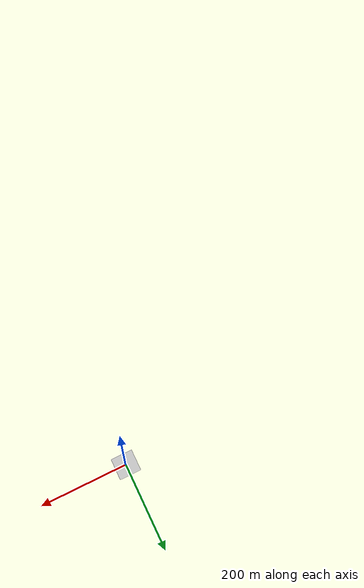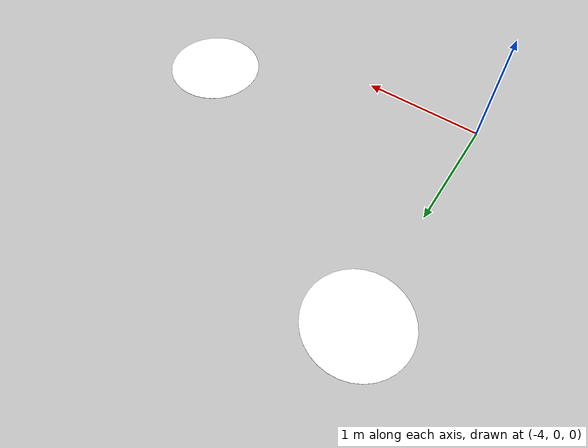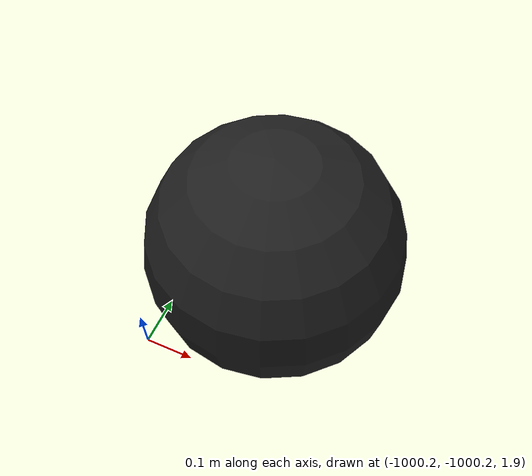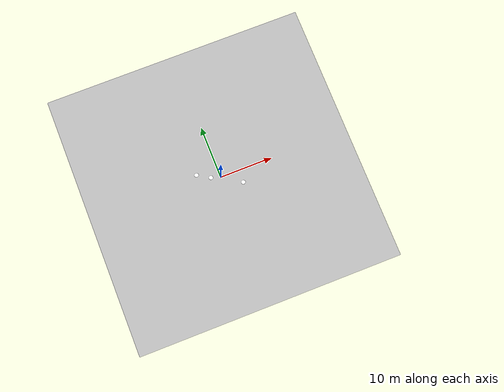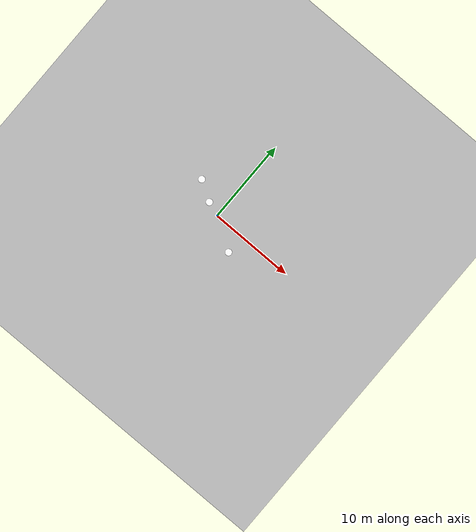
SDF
<sdf version="1.10">
 <world name="sae1_26">
  <physics type="ode">
   <max_step_size>0.004</max_step_size>
   <real_time_factor>1.0</real_time_factor>
   <real_time_update_rate>250</real_time_update_rate>
  </physics>
  <plugin name="gz::sim::systems::Physics" filename="gz-sim-physics-system"/>
  <plugin name="gz::sim::systems::UserCommands" filename="gz-sim-user-commands-system"/>
  <plugin name="gz::sim::systems::SceneBroadcaster" filename="gz-sim-scene-broadcaster-system"/>
  <plugin name="gz::sim::systems::Contact" filename="gz-sim-contact-system"/>
  <plugin name="gz::sim::systems::Imu" filename="gz-sim-imu-system"/>
  <plugin name="gz::sim::systems::AirPressure" filename="gz-sim-air-pressure-system"/>
  <plugin name="gz::sim::systems::ApplyLinkWrench" filename="gz-sim-apply-link-wrench-system"/>
  <plugin name="gz::sim::systems::NavSat" filename="gz-sim-navsat-system"/>
  <plugin name="gz::sim::systems::Sensors" filename="gz-sim-sensors-system">
   <render_engine>ogre2</render_engine>
  </plugin>
  <gravity>0 0 -9.8</gravity>
  <magnetic_field>6e-06 2.3e-05 -4.2e-05</magnetic_field>
  <atmosphere type="adiabatic"/>
  <spherical_coordinates>
   <surface_model>EARTH_WGS84</surface_model>
   <world_frame_orientation>ENU</world_frame_orientation>
   <latitude_deg>-23.203008</latitude_deg>
   <longitude_deg>-45.874897</longitude_deg>
   <elevation>0</elevation>
  </spherical_coordinates>
  <scene><ambient>0.4 0.4 0.4 1</ambient><background>0.7 0.7 0.7 1</background><shadows>true</shadows></scene>
  <light type="directional" name="sun">
   <pose>0 0 20 0 0 0</pose>
   <ambient>0.8 0.8 0.8 1</ambient>
   <diffuse>1.0 1.0 1.0 1</diffuse>
   <specular>0.2 0.2 0.2 1</specular>
   <attenuation>
    <range>1000</range>
    <constant>0.9</constant>
    <linear>0.01</linear>
    <quadratic>0.001</quadratic>
   </attenuation>
   <direction>-0.5 0.1 -0.9</direction>
  </light>
  <model name="ground_plane">
   <static>true</static>
   <link name="link">
    <collision name="collision">
     <geometry><plane><normal>0 0 1</normal><size>250 250</size></plane></geometry>
     <surface><friction><ode><mu>1</mu><mu2>1</mu2></ode></friction></surface>
    </collision>
    <visual name="grass">
     <cast_shadows>false</cast_shadows>
     <geometry><mesh><uri>file://grass_plane/meshes/grass_plane.dae</uri></mesh></geometry>
    </visual>
   </link>
  </model>
  <model name="the_void">
   <static>1</static>
   <link name="link">
    <pose>0 0 0.1 0 -0 0</pose>
    <visual name="the_void">
     <pose>0 0 2 0 -0 0</pose>
     <geometry><sphere><radius>0.25</radius></sphere></geometry>
     <material>
      <script><uri>file://media/materials/scripts/Gazebo.material</uri><name>Gazebo/Black</name></script>
     </material>
    </visual>
   </link>
   <pose>-1000 -1000 0 0 0 0</pose>
  </model>
  <include><uri>model://sae_26/base_hex3</uri><pose>3.55 -2.3 0.001 0 0 0</pose><scale>1 1 1</scale></include>
  <include><uri>model://sae_26/base_hex4</uri><pose>-1.7 0.6 0.001 0 0 0</pose><scale>1 1 1</scale></include>
  <include>
   <uri>model://sae_26/base_hex_aruco_3</uri>
   <pose>-4 2.0 0.001 0 0 0</pose>
   <scale>1 1 1</scale>
  </include>
 </world>
</sdf>

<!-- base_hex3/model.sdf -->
<sdf version="1.8">
  <model name="base_hex3">
    <static>true</static>
    <link name="Cylinder_link">
      <visual name="Cylinder">
        <geometry>
          <mesh>
            <uri>model://sae_26/base_hex3/meshes/model.dae</uri>
            <submesh>
              <name>Cylinder</name>
            </submesh>
          </mesh>
        </geometry>
        <material>
          <diffuse>1.0 1.0 1.0 1.0</diffuse>
          <specular>0.0 0.0 0.0 1.0</specular>
          <pbr>
            <metal>
              <albedo_map>model://sae_26/base_hex3/meshes/hex3.png</albedo_map>
            </metal>
          </pbr>
        </material>
      </visual>
      <collision name="collision">
        <geometry>
          <mesh>
            <uri>model://sae_26/base_hex3/meshes/model.dae</uri>
          </mesh>
        </geometry>
        <surface>
          <contact>
            <collide_bitmask>0x01</collide_bitmask>
          </contact>
        </surface>
      </collision>
    </link>
  </model>
</sdf>

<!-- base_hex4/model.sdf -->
<sdf version="1.8">
  <model name="base_hex4">
    <static>true</static>
    <link name="Cylinder_link">
      <visual name="Cylinder">
        <geometry>
          <mesh>
            <uri>model://sae_26/base_hex4/meshes/model.dae</uri>
            <submesh>
              <name>Cylinder</name>
            </submesh>
          </mesh>
        </geometry>
        <material>
          <diffuse>1.0 1.0 1.0 1.0</diffuse>
          <specular>0.0 0.0 0.0 1.0</specular>
          <pbr>
            <metal>
              <albedo_map>model://sae_26/base_hex4/meshes/hex4.png</albedo_map>
            </metal>
          </pbr>
        </material>
      </visual>
      <collision name="collision">
        <geometry>
          <mesh>
            <uri>model://sae_26/base_hex4/meshes/model.dae</uri>
          </mesh>
        </geometry>
        <surface>
          <contact>
            <collide_bitmask>0x01</collide_bitmask>
          </contact>
        </surface>
      </collision>
    </link>
  </model>
</sdf>

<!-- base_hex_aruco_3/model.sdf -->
<sdf version="1.8">
  <model name="base_hex_aruco_3">
    <static>true</static>
    <link name="Cylinder_link">
      <visual name="Cylinder">
        <geometry>
          <mesh>
            <uri>model://sae_26/base_hex_aruco_3/meshes/model.dae</uri>
            <submesh>
              <name>Cylinder</name>
            </submesh>
          </mesh>
        </geometry>
        <material>
          <diffuse>1.0 1.0 1.0 1.0</diffuse>
          <specular>0.0 0.0 0.0 1.0</specular>
          <pbr>
            <metal>
              <albedo_map>model://sae_26/base_hex_aruco_3/meshes/hex_aruco_3.png</albedo_map>
            </metal>
          </pbr>
        </material>
      </visual>
      <collision name="collision">
        <geometry>
          <mesh>
            <uri>model://sae_26/base_hex_aruco_3/meshes/model.dae</uri>
          </mesh>
        </geometry>
        <surface>
          <contact>
            <collide_bitmask>0x01</collide_bitmask>
          </contact>
        </surface>
      </collision>
    </link>
  </model>
</sdf>
